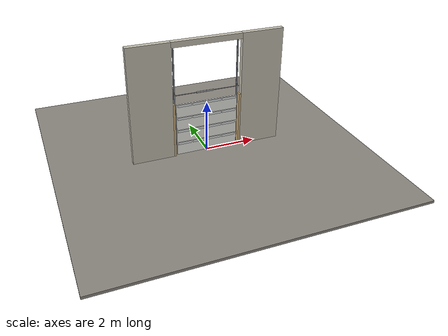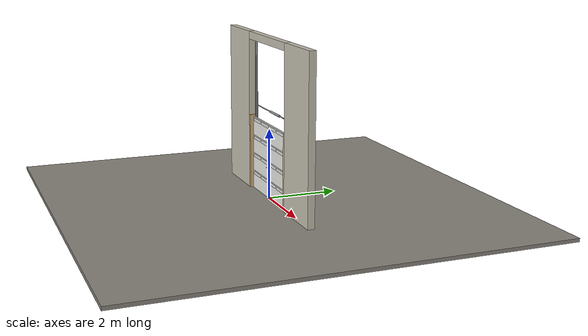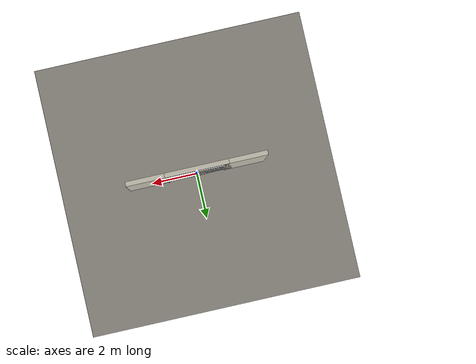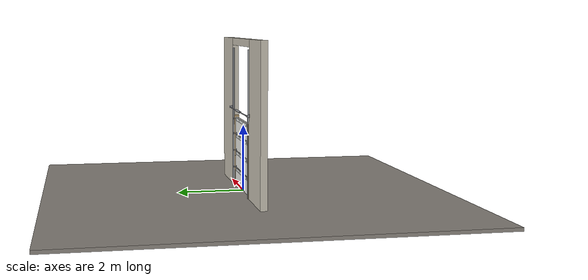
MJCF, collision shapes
<?xml version="1.0" ?>
<mujoco model="db0780_garage_sectional_full">
  <compiler angle="radian" meshdir="../../hardware" texturedir="../../textures" autolimits="true" inertiafromgeom="false"/>
  <option timestep="0.002" integrator="implicitfast" cone="elliptic" impratio="10" noslip_iterations="3">
    <flag multiccd="enable"/>
  </option>
  <size memory="16M"/>
  <default>
    <geom condim="4" solref="0.005 1" solimp="0.95 0.99 0.001"/>
    <joint solreflimit="0.005 1" solimplimit="0.95 0.99 0.001"/>
    <tendon solreflimit="0.005 1"/>
    <equality solref="0.002 1"/>
  </default>
  <visual>
    <headlight ambient="0.4 0.4 0.4" diffuse="0.7 0.7 0.7" specular="0.2 0.2 0.2"/>
    <quality shadowsize="4096"/>
    <map znear="0.01" zfar="60"/>
  </visual>
  <asset>
    <mesh name="lever_01c630149d" file="lever_01c630149d.obj"/>
    <material name="mat_floor" rgba="0.55 0.53 0.5 1" specular="0.2" shininess="0.15" reflectance="0"/>
    <material name="mat_wall" rgba="0.78 0.76 0.7 1" specular="0.2" shininess="0.1" reflectance="0"/>
    <material name="mat_frame" rgba="0.82 0.7 0.5 1" specular="0.2" shininess="0.45" reflectance="0"/>
    <material name="mat_track" rgba="0.65 0.66 0.68 1" specular="0.74" shininess="0.5" reflectance="0.36"/>
    <material name="mat_section_0" rgba="0.93 0.93 0.91 1" specular="0.23" shininess="0.4" reflectance="0.02"/>
    <material name="mat_glass" rgba="0.85 0.92 0.95 0.25" specular="0.2" shininess="0.95" reflectance="0.1"/>
    <material name="mat_section_1" rgba="0.93 0.93 0.91 1" specular="0.23" shininess="0.4" reflectance="0.02"/>
    <material name="mat_hinge_line" rgba="0.2 0.2 0.2 1" specular="0.2" shininess="0.3" reflectance="0"/>
    <material name="mat_section_2" rgba="0.93 0.93 0.91 1" specular="0.23" shininess="0.4" reflectance="0.02"/>
    <material name="mat_section_3" rgba="0.93 0.93 0.91 1" specular="0.23" shininess="0.4" reflectance="0.02"/>
    <material name="mat_spring" rgba="0.55 0.56 0.58 1" specular="0.8" shininess="0.55" reflectance="0.4"/>
    <material name="mat_op_black_matte_metal" rgba="0.05 0.05 0.05 1" specular="0.38" shininess="0.3" reflectance="0.12"/>
    <material name="mat_trim" rgba="0.85 0.66 0.3 1" specular="0.8" shininess="0.75" reflectance="0.4"/>
    <material name="mat_lockbar" rgba="0.65 0.66 0.68 1" specular="0.74" shininess="0.5" reflectance="0.36"/>
    <texture name="skybox" type="skybox" builtin="gradient" rgb1="0.6 0.7 0.85" rgb2="0.9 0.92 0.95" width="256" height="256"/>
  </asset>
  <worldbody>
    <light name="sun" pos="1.5 -2.5 4" dir="-0.3 0.5 -0.8" directional="true" diffuse="0.8 0.8 0.8" specular="0.3 0.3 0.3" castshadow="true"/>
    <light name="fill" pos="-1.5 2.5 3" dir="0.3 -0.5 -0.7" directional="true" diffuse="0.35 0.35 0.4" castshadow="false"/>
    <camera name="robot_view" pos="0 -2.959375 1.918625" xyaxes="1 0 0 0 0.26963 0.962964" fovy="52"/>
    <camera name="far_view" pos="0 2.959375 1.918625" xyaxes="-1 0 0 0 -0.26963 0.962964" fovy="52"/>
    <camera name="iso" pos="2.249125 -2.485875 2.392125" xyaxes="0.741536 0.670913 0 -0.242917 0.268487 0.932151" fovy="46"/>
    <camera name="detail_handle" pos="0.2115 -1.165 1.25" xyaxes="0.975133 0.221621 0 -0.065674 0.288965 0.955084" fovy="38"/>
    <geom name="floor" type="box" size="6 6 0.05" pos="0 0 -0.05" material="mat_floor" group="0" contype="1" conaffinity="1" friction="0.8 0.005 0.0001" density="2400"/>
    <geom name="wall_left" type="box" size="0.8175 0.1 2.305" pos="-2.1825 0 2.305" material="mat_wall" group="0" contype="1" conaffinity="1" friction="0.6 0.005 0.0001" density="800"/>
    <geom name="wall_right" type="box" size="0.8175 0.1 2.305" pos="2.1825 0 2.305" material="mat_wall" group="0" contype="1" conaffinity="1" friction="0.6 0.005 0.0001" density="800"/>
    <geom name="wall_header" type="box" size="1.365 0.1 0.11" pos="0 0 4.5" material="mat_wall" group="0" contype="1" conaffinity="1" friction="0.6 0.005 0.0001" density="800"/>
    <geom name="garage_jamb_l" type="box" size="0.04 0.1 1.09" pos="-1.325 0 1.09" material="mat_frame" group="0" contype="1" conaffinity="1" friction="0.6 0.005 0.0001" density="400"/>
    <geom name="garage_jamb_r" type="box" size="0.04 0.1 1.09" pos="1.325 0 1.09" material="mat_frame" group="0" contype="1" conaffinity="1" friction="0.6 0.005 0.0001" density="400"/>
    <geom name="track_l" type="box" size="0.004 0.033 2.155" pos="-1.27 0.085 2.155" material="mat_track" group="0" contype="1" conaffinity="1" friction="0.6 0.005 0.0001" density="7850"/>
    <geom name="track_l_flange_n" type="box" size="0.022 0.004 2.155" pos="-1.252 0.056 2.155" material="mat_track" group="0" contype="1" conaffinity="1" friction="0.6 0.005 0.0001" density="7850"/>
    <geom name="track_l_flange_p" type="box" size="0.022 0.004 2.155" pos="-1.252 0.114 2.155" material="mat_track" group="0" contype="1" conaffinity="1" friction="0.6 0.005 0.0001" density="7850"/>
    <geom name="track_r" type="box" size="0.004 0.033 2.155" pos="1.27 0.085 2.155" material="mat_track" group="0" contype="1" conaffinity="1" friction="0.6 0.005 0.0001" density="7850"/>
    <geom name="track_r_flange_n" type="box" size="0.022 0.004 2.155" pos="1.252 0.056 2.155" material="mat_track" group="0" contype="1" conaffinity="1" friction="0.6 0.005 0.0001" density="7850"/>
    <geom name="track_r_flange_p" type="box" size="0.022 0.004 2.155" pos="1.252 0.114 2.155" material="mat_track" group="0" contype="1" conaffinity="1" friction="0.6 0.005 0.0001" density="7850"/>
    <geom name="torsion_shaft" type="cylinder" size="0.013 1.475" pos="0 0.17 2.43" quat="0.707107 0 0.707107 0" material="mat_track" group="0" contype="1" conaffinity="1" friction="0.6 0.005 0.0001" density="7850"/>
    <geom name="torsion_spring" type="cylinder" size="0.03 0.35" pos="0 0.17 2.43" quat="0.707107 0 0.707107 0" material="mat_spring" group="1" contype="0" conaffinity="0" density="7850"/>
    <geom name="torsion_bearing_plate_l" type="box" size="0.055 0.004 0.055" pos="-1.425 0.104 2.43" material="mat_track" group="1" contype="0" conaffinity="0" density="7850"/>
    <geom name="torsion_bearing_arm_l" type="box" size="0.008 0.049 0.03" pos="-1.425 0.139 2.43" material="mat_track" group="1" contype="0" conaffinity="0" density="7850"/>
    <geom name="torsion_bearing_plate_r" type="box" size="0.055 0.004 0.055" pos="1.425 0.104 2.43" material="mat_track" group="1" contype="0" conaffinity="0" density="7850"/>
    <geom name="torsion_bearing_arm_r" type="box" size="0.008 0.049 0.03" pos="1.425 0.139 2.43" material="mat_track" group="1" contype="0" conaffinity="0" density="7850"/>
    <site name="approach_point" pos="0 -2 0" quat="1 0 0 0" size="0.05" rgba="0.2 0.9 0.2 0.5" group="4"/>
    <site name="goal_point" pos="0 2 0" quat="1 0 0 0" size="0.05" rgba="0.2 0.9 0.2 0.5" group="4"/>
    <site name="door_plane_center" pos="0 0 1.09" quat="1 0 0 0" size="0.02" rgba="0.2 0.9 0.2 0.5" group="4"/>
    <body name="door" pos="0 0 0">
      <inertial pos="0 0.010621 1.074589" mass="67.362988" quat="0.707077 0.707137 0 0" diaginertia="24.646483547 42.214525626 66.770655929"/>
      <joint name="door_slide" type="slide" axis="0 0 1" limited="true" range="0 2.08" damping="5.388149" frictionloss="43.194314" stiffness="91.084207" springref="6.933333" armature="0.5"/>
      <geom name="section_0_slab" type="box" size="1.22 0.025 0.26625" pos="0 0 0.27625" material="mat_section_0" group="0" contype="1" conaffinity="1" friction="0.4 0.005 0.0001" density="1"/>
      <geom name="section_0_glass_0" type="box" size="0.2775 0.0258 0.0426" pos="-0.8925 0 0.46795" material="mat_glass" group="1" contype="0" conaffinity="0" density="1"/>
      <geom name="section_0_glass_1" type="box" size="0.2775 0.0258 0.0426" pos="-0.2975 0 0.46795" material="mat_glass" group="1" contype="0" conaffinity="0" density="1"/>
      <geom name="section_0_glass_2" type="box" size="0.2775 0.0258 0.0426" pos="0.2975 0 0.46795" material="mat_glass" group="1" contype="0" conaffinity="0" density="1"/>
      <geom name="section_0_glass_3" type="box" size="0.2775 0.0258 0.0426" pos="0.8925 0 0.46795" material="mat_glass" group="1" contype="0" conaffinity="0" density="1"/>
      <geom name="section_1_slab" type="box" size="1.22 0.025 0.26625" pos="0 0 0.80875" material="mat_section_1" group="0" contype="1" conaffinity="1" friction="0.4 0.005 0.0001" density="1"/>
      <geom name="section_1_glass_0" type="box" size="0.2775 0.0258 0.0426" pos="-0.8925 0 1.00045" material="mat_glass" group="1" contype="0" conaffinity="0" density="1"/>
      <geom name="section_1_glass_1" type="box" size="0.2775 0.0258 0.0426" pos="-0.2975 0 1.00045" material="mat_glass" group="1" contype="0" conaffinity="0" density="1"/>
      <geom name="section_1_glass_2" type="box" size="0.2775 0.0258 0.0426" pos="0.2975 0 1.00045" material="mat_glass" group="1" contype="0" conaffinity="0" density="1"/>
      <geom name="section_1_glass_3" type="box" size="0.2775 0.0258 0.0426" pos="0.8925 0 1.00045" material="mat_glass" group="1" contype="0" conaffinity="0" density="1"/>
      <geom name="section_hinge_line_1" type="box" size="1.2 0.001 0.004" pos="0 0.026 0.5425" material="mat_hinge_line" group="1" contype="0" conaffinity="0" density="1"/>
      <geom name="section_hinge_1_132" type="box" size="0.04 0.01 0.05" pos="-1.12 0.035 0.5425" material="mat_track" group="1" contype="0" conaffinity="0" density="7850"/>
      <geom name="section_hinge_1_244" type="box" size="0.04 0.01 0.05" pos="0 0.035 0.5425" material="mat_track" group="1" contype="0" conaffinity="0" density="7850"/>
      <geom name="section_hinge_1_355" type="box" size="0.04 0.01 0.05" pos="1.12 0.035 0.5425" material="mat_track" group="1" contype="0" conaffinity="0" density="7850"/>
      <geom name="section_2_slab" type="box" size="1.22 0.025 0.26625" pos="0 0 1.34125" material="mat_section_2" group="0" contype="1" conaffinity="1" friction="0.4 0.005 0.0001" density="1"/>
      <geom name="section_2_glass_0" type="box" size="0.2775 0.0258 0.0426" pos="-0.8925 0 1.53295" material="mat_glass" group="1" contype="0" conaffinity="0" density="1"/>
      <geom name="section_2_glass_1" type="box" size="0.2775 0.0258 0.0426" pos="-0.2975 0 1.53295" material="mat_glass" group="1" contype="0" conaffinity="0" density="1"/>
      <geom name="section_2_glass_2" type="box" size="0.2775 0.0258 0.0426" pos="0.2975 0 1.53295" material="mat_glass" group="1" contype="0" conaffinity="0" density="1"/>
      <geom name="section_2_glass_3" type="box" size="0.2775 0.0258 0.0426" pos="0.8925 0 1.53295" material="mat_glass" group="1" contype="0" conaffinity="0" density="1"/>
      <geom name="section_hinge_line_2" type="box" size="1.2 0.001 0.004" pos="0 0.026 1.075" material="mat_hinge_line" group="1" contype="0" conaffinity="0" density="1"/>
      <geom name="section_hinge_2_132" type="box" size="0.04 0.01 0.05" pos="-1.12 0.035 1.075" material="mat_track" group="1" contype="0" conaffinity="0" density="7850"/>
      <geom name="section_hinge_2_244" type="box" size="0.04 0.01 0.05" pos="0 0.035 1.075" material="mat_track" group="1" contype="0" conaffinity="0" density="7850"/>
      <geom name="section_hinge_2_355" type="box" size="0.04 0.01 0.05" pos="1.12 0.035 1.075" material="mat_track" group="1" contype="0" conaffinity="0" density="7850"/>
      <geom name="section_3_slab" type="box" size="1.22 0.025 0.26625" pos="0 0 1.87375" material="mat_section_3" group="0" contype="1" conaffinity="1" friction="0.4 0.005 0.0001" density="1"/>
      <geom name="section_3_glass_0" type="box" size="0.2775 0.0258 0.0426" pos="-0.8925 0 2.06545" material="mat_glass" group="1" contype="0" conaffinity="0" density="1"/>
      <geom name="section_3_glass_1" type="box" size="0.2775 0.0258 0.0426" pos="-0.2975 0 2.06545" material="mat_glass" group="1" contype="0" conaffinity="0" density="1"/>
      <geom name="section_3_glass_2" type="box" size="0.2775 0.0258 0.0426" pos="0.2975 0 2.06545" material="mat_glass" group="1" contype="0" conaffinity="0" density="1"/>
      <geom name="section_3_glass_3" type="box" size="0.2775 0.0258 0.0426" pos="0.8925 0 2.06545" material="mat_glass" group="1" contype="0" conaffinity="0" density="1"/>
      <geom name="section_hinge_line_3" type="box" size="1.2 0.001 0.004" pos="0 0.026 1.6075" material="mat_hinge_line" group="1" contype="0" conaffinity="0" density="1"/>
      <geom name="section_hinge_3_132" type="box" size="0.04 0.01 0.05" pos="-1.12 0.035 1.6075" material="mat_track" group="1" contype="0" conaffinity="0" density="7850"/>
      <geom name="section_hinge_3_244" type="box" size="0.04 0.01 0.05" pos="0 0.035 1.6075" material="mat_track" group="1" contype="0" conaffinity="0" density="7850"/>
      <geom name="section_hinge_3_355" type="box" size="0.04 0.01 0.05" pos="1.12 0.035 1.6075" material="mat_track" group="1" contype="0" conaffinity="0" density="7850"/>
      <geom name="roller_l_0" type="cylinder" size="0.025 0.01" pos="-1.25 0.085 0.04" quat="0.707107 0 0.707107 0" material="mat_track" group="1" contype="0" conaffinity="0" density="7850"/>
      <geom name="roller_stem_l_0" type="cylinder" size="0.006 0.027" pos="-1.225 0.085 0.04" quat="0.707107 0 0.707107 0" material="mat_track" group="1" contype="0" conaffinity="0" density="7850"/>
      <geom name="roller_arm_l_0" type="box" size="0.03 0.03 0.006" pos="-1.2 0.055 0.04" material="mat_track" group="1" contype="0" conaffinity="0" density="7850"/>
      <geom name="roller_l_1" type="cylinder" size="0.025 0.01" pos="-1.25 0.085 0.5425" quat="0.707107 0 0.707107 0" material="mat_track" group="1" contype="0" conaffinity="0" density="7850"/>
      <geom name="roller_stem_l_1" type="cylinder" size="0.006 0.027" pos="-1.225 0.085 0.5425" quat="0.707107 0 0.707107 0" material="mat_track" group="1" contype="0" conaffinity="0" density="7850"/>
      <geom name="roller_arm_l_1" type="box" size="0.03 0.03 0.006" pos="-1.2 0.055 0.5425" material="mat_track" group="1" contype="0" conaffinity="0" density="7850"/>
      <geom name="roller_l_2" type="cylinder" size="0.025 0.01" pos="-1.25 0.085 1.075" quat="0.707107 0 0.707107 0" material="mat_track" group="1" contype="0" conaffinity="0" density="7850"/>
      <geom name="roller_stem_l_2" type="cylinder" size="0.006 0.027" pos="-1.225 0.085 1.075" quat="0.707107 0 0.707107 0" material="mat_track" group="1" contype="0" conaffinity="0" density="7850"/>
      <geom name="roller_arm_l_2" type="box" size="0.03 0.03 0.006" pos="-1.2 0.055 1.075" material="mat_track" group="1" contype="0" conaffinity="0" density="7850"/>
      <geom name="roller_l_3" type="cylinder" size="0.025 0.01" pos="-1.25 0.085 1.6075" quat="0.707107 0 0.707107 0" material="mat_track" group="1" contype="0" conaffinity="0" density="7850"/>
      <geom name="roller_stem_l_3" type="cylinder" size="0.006 0.027" pos="-1.225 0.085 1.6075" quat="0.707107 0 0.707107 0" material="mat_track" group="1" contype="0" conaffinity="0" density="7850"/>
      <geom name="roller_arm_l_3" type="box" size="0.03 0.03 0.006" pos="-1.2 0.055 1.6075" material="mat_track" group="1" contype="0" conaffinity="0" density="7850"/>
      <geom name="roller_l_4" type="cylinder" size="0.025 0.01" pos="-1.25 0.085 2.08" quat="0.707107 0 0.707107 0" material="mat_track" group="1" contype="0" conaffinity="0" density="7850"/>
      <geom name="roller_stem_l_4" type="cylinder" size="0.006 0.027" pos="-1.225 0.085 2.08" quat="0.707107 0 0.707107 0" material="mat_track" group="1" contype="0" conaffinity="0" density="7850"/>
      <geom name="roller_arm_l_4" type="box" size="0.03 0.03 0.006" pos="-1.2 0.055 2.08" material="mat_track" group="1" contype="0" conaffinity="0" density="7850"/>
      <geom name="roller_r_0" type="cylinder" size="0.025 0.01" pos="1.25 0.085 0.04" quat="0.707107 0 0.707107 0" material="mat_track" group="1" contype="0" conaffinity="0" density="7850"/>
      <geom name="roller_stem_r_0" type="cylinder" size="0.006 0.027" pos="1.225 0.085 0.04" quat="0.707107 0 0.707107 0" material="mat_track" group="1" contype="0" conaffinity="0" density="7850"/>
      <geom name="roller_arm_r_0" type="box" size="0.03 0.03 0.006" pos="1.2 0.055 0.04" material="mat_track" group="1" contype="0" conaffinity="0" density="7850"/>
      <geom name="roller_r_1" type="cylinder" size="0.025 0.01" pos="1.25 0.085 0.5425" quat="0.707107 0 0.707107 0" material="mat_track" group="1" contype="0" conaffinity="0" density="7850"/>
      <geom name="roller_stem_r_1" type="cylinder" size="0.006 0.027" pos="1.225 0.085 0.5425" quat="0.707107 0 0.707107 0" material="mat_track" group="1" contype="0" conaffinity="0" density="7850"/>
      <geom name="roller_arm_r_1" type="box" size="0.03 0.03 0.006" pos="1.2 0.055 0.5425" material="mat_track" group="1" contype="0" conaffinity="0" density="7850"/>
      <geom name="roller_r_2" type="cylinder" size="0.025 0.01" pos="1.25 0.085 1.075" quat="0.707107 0 0.707107 0" material="mat_track" group="1" contype="0" conaffinity="0" density="7850"/>
      <geom name="roller_stem_r_2" type="cylinder" size="0.006 0.027" pos="1.225 0.085 1.075" quat="0.707107 0 0.707107 0" material="mat_track" group="1" contype="0" conaffinity="0" density="7850"/>
      <geom name="roller_arm_r_2" type="box" size="0.03 0.03 0.006" pos="1.2 0.055 1.075" material="mat_track" group="1" contype="0" conaffinity="0" density="7850"/>
      <geom name="roller_r_3" type="cylinder" size="0.025 0.01" pos="1.25 0.085 1.6075" quat="0.707107 0 0.707107 0" material="mat_track" group="1" contype="0" conaffinity="0" density="7850"/>
      <geom name="roller_stem_r_3" type="cylinder" size="0.006 0.027" pos="1.225 0.085 1.6075" quat="0.707107 0 0.707107 0" material="mat_track" group="1" contype="0" conaffinity="0" density="7850"/>
      <geom name="roller_arm_r_3" type="box" size="0.03 0.03 0.006" pos="1.2 0.055 1.6075" material="mat_track" group="1" contype="0" conaffinity="0" density="7850"/>
      <geom name="roller_r_4" type="cylinder" size="0.025 0.01" pos="1.25 0.085 2.08" quat="0.707107 0 0.707107 0" material="mat_track" group="1" contype="0" conaffinity="0" density="7850"/>
      <geom name="roller_stem_r_4" type="cylinder" size="0.006 0.027" pos="1.225 0.085 2.08" quat="0.707107 0 0.707107 0" material="mat_track" group="1" contype="0" conaffinity="0" density="7850"/>
      <geom name="roller_arm_r_4" type="box" size="0.03 0.03 0.006" pos="1.2 0.055 2.08" material="mat_track" group="1" contype="0" conaffinity="0" density="7850"/>
      <body name="t_handle" pos="0 0 0.9">
        <inertial pos="0 -0.045213 0" mass="0.325958" quat="0.707107 0 0 -0.707107" diaginertia="0.000208772 0.000249043 0.000430112"/>
        <joint name="t_handle_hinge" type="hinge" axis="0 -1 0" limited="true" range="0 1.5708" damping="0.127805" frictionloss="0.028" stiffness="0.4" springref="-0.75" armature="0.01"/>
        <geom name="t_handle_spindle" type="cylinder" size="0.006 0.033" pos="0 0 0" quat="0.707107 -0.707107 0 0" material="mat_op_black_matte_metal" group="1" contype="0" conaffinity="0" density="7850"/>
        <geom name="t_handle_t_n" type="mesh" mesh="lever_01c630149d" pos="0 -0.025 0" quat="0.707107 0.707107 0 0" material="mat_op_black_matte_metal" group="1" contype="0" conaffinity="0" density="3000"/>
        <geom name="t_handle_t_col_n" type="box" size="0.055 0.008 0.008" pos="0 -0.065 0" material="mat_op_black_matte_metal" group="3" contype="1" conaffinity="1" rgba="0.8 0.3 0.3 0.25" friction="0.6 0.005 0.0001" density="3000"/>
        <geom name="t_handle_cylinder_n" type="cylinder" size="0.0085 0.004" pos="0 -0.075 0" quat="0.707107 -0.707107 0 0" material="mat_trim" group="1" contype="0" conaffinity="0" density="7100"/>
        <site name="t_handle_grip_n" pos="-0.0385 -0.065 0" quat="1 0 0 0" size="0.012" rgba="0.2 0.9 0.2 0.5" group="4"/>
      </body>
      <body name="lock_bar_l" pos="-1.17 0.03 0.9">
        <inertial pos="-0.04 0 0" mass="0.095884" quat="0 0 0.707107 0.707107" diaginertia="0.0000017 0.00009424 0.00009424"/>
        <joint name="lock_bar_l_slide" type="slide" axis="1 0 0" limited="true" range="0 0.03" damping="2" frictionloss="1" armature="0.1"/>
        <geom name="lock_bar_l_geom" type="capsule" size="0.006 0.05" pos="-0.04 0 0" quat="0.707107 0 0.707107 0" material="mat_lockbar" group="1" contype="0" conaffinity="0" density="7850"/>
      </body>
      <body name="lock_bar_r" pos="1.17 0.03 0.9">
        <inertial pos="0.04 0 0" mass="0.095884" quat="0 0 0.707107 0.707107" diaginertia="0.0000017 0.00009424 0.00009424"/>
        <joint name="lock_bar_r_slide" type="slide" axis="-1 0 0" limited="true" range="0 0.03" damping="2" frictionloss="1" armature="0.1"/>
        <geom name="lock_bar_r_geom" type="capsule" size="0.006 0.05" pos="0.04 0 0" quat="0.707107 0 0.707107 0" material="mat_lockbar" group="1" contype="0" conaffinity="0" density="7850"/>
      </body>
    </body>
  </worldbody>
  <equality>
    <joint name="lock_bar_l_couple" joint1="lock_bar_l_slide" joint2="t_handle_hinge" polycoef="0 0.019099 0 0 0" active="true"/>
    <joint name="lock_bar_r_couple" joint1="lock_bar_r_slide" joint2="t_handle_hinge" polycoef="0 0.019099 0 0 0" active="true"/>
  </equality>
  <sensor>
    <jointpos name="door_slide_pos" joint="door_slide"/>
    <jointvel name="door_slide_vel" joint="door_slide"/>
    <jointpos name="t_handle_hinge_pos" joint="t_handle_hinge"/>
    <jointvel name="t_handle_hinge_vel" joint="t_handle_hinge"/>
    <jointpos name="lock_bar_l_slide_pos" joint="lock_bar_l_slide"/>
    <jointvel name="lock_bar_l_slide_vel" joint="lock_bar_l_slide"/>
    <jointpos name="lock_bar_r_slide_pos" joint="lock_bar_r_slide"/>
    <jointvel name="lock_bar_r_slide_vel" joint="lock_bar_r_slide"/>
  </sensor>
</mujoco>
